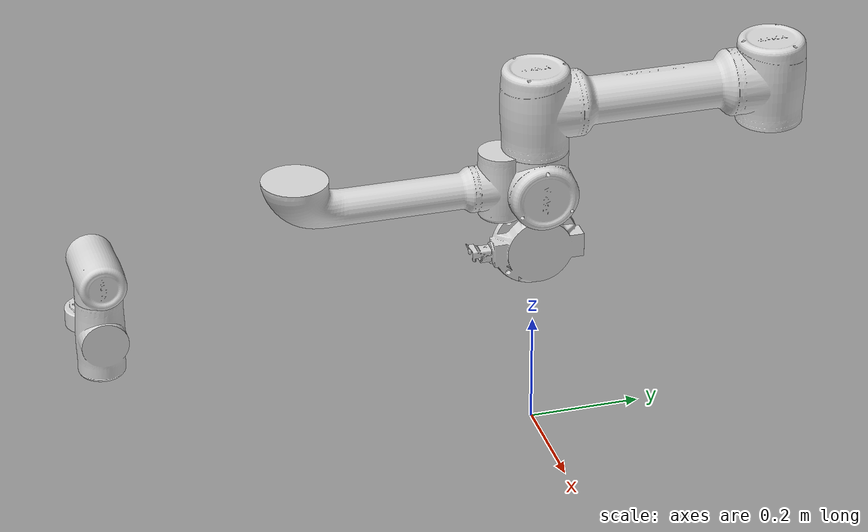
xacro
<?xml version="1.0"?>
<robot xmlns:xacro="http://www.ros.org/wiki/xacro" name="jaka_zu5">
    <xacro:arg name="initial_positions_file" default="initial_positions.yaml" />

    <!-- Import jaka_zu5 urdf file -->
    <xacro:include filename="$(find jaka_description)/urdf/jaka_zu5.urdf" />

    <!-- Import control_xacro -->
    <xacro:include filename="jaka_zu5.ros2_control.xacro" />

    <xacro:jaka_zu5_ros2_control name="RealSystem" initial_positions_file="$(arg initial_positions_file)"/>

</robot>

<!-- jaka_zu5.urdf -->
<robot
  name="jaka_zu5">

  <!-- LINK -->
  <link name="base_link" />

  <link
    name="Link_0">
    <inertial>
      <origin
        xyz="0.00096371 8.8222E-08 0.019555"
        rpy="0 0 0" />
      <mass
        value="4.0392" />
      <inertia
        ixx="0.0048763"
        ixy="-1.8056E-07"
        ixz="2.5196E-05"
        iyy="0.0068003"
        iyz="-1.7678E-09"
        izz="0.010618" />
    </inertial>
    <visual>
      <origin
        xyz="0 0 0"
        rpy="0 0 0" />
      <geometry>
        <mesh
          filename="package://jaka_description/meshes/jaka_zu5_meshes/Link_0.STL" />
      </geometry>
      <material
        name="">
        <color
          rgba="0.84706 0.84706 0.84706 1" />
      </material>
    </visual>
    <collision>
      <origin
        xyz="0 0 0"
        rpy="0 0 0" />
      <geometry>
        <mesh
          filename="package://jaka_description/meshes/jaka_zu5_meshes/Link_0.STL" />
      </geometry>
    </collision>
  </link>
  <link
    name="Link_1">
    <inertial>
      <origin
        xyz="-2.5186E-07 0.0033226 -0.001509"
        rpy="0 0 0" />
      <mass
        value="15.135" />
      <inertia
        ixx="0.044302"
        ixy="1.5349E-07"
        ixz="-6.1966E-07"
        iyy="0.043091"
        iyz="1.4326E-05"
        izz="0.030523" />
    </inertial>
    <visual>
      <origin
        xyz="0 0 0"
        rpy="0 0 0" />
      <geometry>
        <mesh
          filename="package://jaka_description/meshes/jaka_zu5_meshes/Link_1.STL" />
      </geometry>
      <material
        name="">
        <color
          rgba="0.84706 0.84706 0.84706 1" />
      </material>
    </visual>
    <collision>
      <origin
        xyz="0 0 0"
        rpy="0 0 0" />
      <geometry>
        <mesh
          filename="package://jaka_description/meshes/jaka_zu5_meshes/Link_1.STL" />
      </geometry>
    </collision>
  </link>

  <link
    name="Link_2">
    <inertial>
      <origin
        xyz="0.215 6.4325E-09 -0.14315"
        rpy="0 0 0" />
      <mass
        value="45.847" />
      <inertia
        ixx="0.10377"
        ixy="-1.3562E-06"
        ixz="2.544E-07"
        iyy="1.5964"
        iyz="2.1509E-08"
        izz="1.5689" />
    </inertial>
    <visual>
      <origin
        xyz="0 0 0"
        rpy="0 0 0" />
      <geometry>
        <mesh
          filename="package://jaka_description/meshes/jaka_zu5_meshes/Link_2.STL" />
      </geometry>
      <material
        name="">
        <color
          rgba="0.84706 0.84706 0.84706 1" />
      </material>
    </visual>
    <collision>
      <origin
        xyz="0 0 0"
        rpy="0 0 0" />
      <geometry>
        <mesh
          filename="package://jaka_description/meshes/jaka_zu5_meshes/Link_2.STL" />
      </geometry>
    </collision>
  </link>

  <link
    name="Link_3">
    <inertial>
      <origin
        xyz="0.19087 -1.1862E-05 -0.010587"
        rpy="0 0 0" />
      <mass
        value="18.069" />
      <inertia
        ixx="0.022066"
        ixy="-3.4554E-06"
        ixz="-0.022609"
        iyy="0.41632"
        iyz="1.1508E-08"
        izz="0.41071" />
    </inertial>
    <visual>
      <origin
        xyz="0 0 0"
        rpy="0 0 0" />
      <geometry>
        <mesh
          filename="package://jaka_description/meshes/jaka_zu5_meshes/Link_3.STL" />
      </geometry>
      <material
        name="">
        <color
          rgba="0.84706 0.84706 0.84706 1" />
      </material>
    </visual>
    <collision>
      <origin
        xyz="0 0 0"
        rpy="0 0 0" />
      <geometry>
        <mesh
          filename="package://jaka_description/meshes/jaka_zu5_meshes/Link_3.STL" />
      </geometry>
    </collision>
  </link>

  <link
    name="Link_4">
    <inertial>
      <origin
        xyz="-2.1345E-06 -0.0058004 0.0026717"
        rpy="0 0 0" />
      <mass
        value="5.5525" />
      <inertia
        ixx="0.0092564"
        ixy="1.1341E-07"
        ixz="-1.2578E-08"
        iyy="0.0052251"
        iyz="-8.3499E-05"
        izz="0.0089683" />
    </inertial>
    <visual>
      <origin
        xyz="0 0 0"
        rpy="0 0 0" />
      <geometry>
        <mesh
          filename="package://jaka_description/meshes/jaka_zu5_meshes/Link_4.STL" />
      </geometry>
      <material
        name="">
        <color
          rgba="0.84706 0.84706 0.84706 1" />
      </material>
    </visual>
    <collision>
      <origin
        xyz="0 0 0"
        rpy="0 0 0" />
      <geometry>
        <mesh
          filename="package://jaka_description/meshes/jaka_zu5_meshes/Link_4.STL" />
      </geometry>
    </collision>
  </link>

  <link
    name="Link_5">
    <inertial>
      <origin
        xyz="-2.0304E-06 -0.0028889 -0.0023424"
        rpy="0 0 0" />
      <mass
        value="6.3339" />
      <inertia
        ixx="0.012993"
        ixy="-1.0764E-07"
        ixz="5.8559E-09"
        iyy="0.0058454"
        iyz="4.5426E-05"
        izz="0.0127" />
    </inertial>
    <visual>
      <origin
        xyz="0 0 0"
        rpy="0 0 0" />
      <geometry>
        <mesh
          filename="package://jaka_description/meshes/jaka_zu5_meshes/Link_5.STL" />
      </geometry>
      <material
        name="">
        <color
          rgba="0.84706 0.84706 0.84706 1" />
      </material>
    </visual>
    <collision>
      <origin
        xyz="0 0 0"
        rpy="0 0 0" />
      <geometry>
        <mesh
          filename="package://jaka_description/meshes/jaka_zu5_meshes/Link_5.STL" />
      </geometry>
    </collision>
  </link>

  <link
    name="Link_6">
    <inertial>
      <origin
        xyz="2.7652E-05 -1.3485E-05 -0.021245"
        rpy="0 0 0" />
      <mass
        value="1.4169" />
      <inertia
        ixx="0.00071853"
        ixy="-6.9778E-07"
        ixz="-6.378E-07"
        iyy="0.00072375"
        iyz="8.3072E-07"
        izz="0.0011337" />
    </inertial>
    <visual>
      <origin
        xyz="0 0 0"
        rpy="0 0 0" />
      <geometry>
        <mesh
          filename="package://jaka_description/meshes/jaka_zu5_meshes/Link_6.STL" />
      </geometry>
      <material
        name="">
        <color
          rgba="0.84706 0.84706 0.84706 1" />
      </material>
    </visual>
    <collision>
      <origin
        xyz="0 0 0"
        rpy="0 0 0" />
      <geometry>
        <mesh
          filename="package://jaka_description/meshes/jaka_zu5_meshes/Link_6.STL" />
      </geometry>
    </collision>
  </link>

  <!-- JOINT -->
  <joint name="fixed" type="fixed">
    <origin xyz="0 0 0.36" rpy="0 0 -1.57" />
     <parent link="base_link"/>
     <child link="Link_0"/>
  </joint>

<!-- base_link 为移动机械臂的基坐标，在水平地面上，Link_0为 机械臂基坐标，机械臂基座在地面高36厘米处 -->

  <joint
    name="joint_1"
    type="revolute">
    <origin
      xyz="0 0 0.12015"
      rpy="0 0 0" />
    <parent
      link="Link_0" />
    <child
      link="Link_1" />
    <axis
      xyz="0 0 1" />
    <limit
      lower="-6.28"
      upper="6.28"
      effort="2000"
      velocity="3.14" />
  </joint>

  <joint
    name="joint_2"
    type="revolute">
    <origin
      xyz="0 0 0"
      rpy="1.5708 0 0" />
    <parent
      link="Link_1" />
    <child
      link="Link_2" />
    <axis
      xyz="0 0 1" />
    <limit
      lower="-1.48"
      upper="4.62"
      effort="5000"
      velocity="3.14" />
  </joint>

  <joint
    name="joint_3"
    type="revolute">
    <origin
      xyz="0.43 0 0"
      rpy="0 0 0" />
    <parent
      link="Link_2" />
    <child
      link="Link_3" />
    <axis
      xyz="0 0 1" />
    <limit
      lower="-3.05"
      upper="3.05"
      effort="5000"
      velocity="3.14" />
  </joint>

  <joint
    name="joint_4"
    type="revolute">
    <origin
      xyz="0.3685 -1.185E-05 -0.114"
      rpy="0 0 0" />
    <parent
      link="Link_3" />
    <child
      link="Link_4" />
    <axis
      xyz="0 0 1" />
    <limit
      lower="-1.48"
      upper="4.62"
      effort="2000"
      velocity="3.14" />
  </joint>

  <joint
    name="joint_5"
    type="revolute">
    <origin
      xyz="0 -0.1135 0"
      rpy="1.5708 0 0" />
    <parent
      link="Link_4" />
    <child
      link="Link_5" />
    <axis
      xyz="0 0 1" />
    <limit
      lower="-6.28"
      upper="6.28"
      effort="3000"
      velocity="3.14" />
  </joint>

  <joint
    name="joint_6"
    type="revolute">
    <origin
      xyz="0 0.107 0"
      rpy="-1.5708 0 0" />
    <parent
      link="Link_5" />
    <child
      link="Link_6" />
    <axis
      xyz="0 0 1" />
    <limit
      lower="-6.28"
      upper="6.28"
      effort="1000"
      velocity="3.14" />
  </joint>

  <transmission name="trans_joint_1">
        <type>transmission_interface/SimpleTransmission</type>
        <joint name="joint_1">
            <hardwareInterface>hardware_interface/PositionJointInterface</hardwareInterface>
        </joint>
        <actuator name="joint_1_motor">
            <hardwareInterface>hardware_interface/PositionJointInterface</hardwareInterface>
            <mechanicalReduction>1</mechanicalReduction>
        </actuator>
    </transmission>
    <transmission name="trans_joint_2">
        <type>transmission_interface/SimpleTransmission</type>
        <joint name="joint_2">
            <hardwareInterface>hardware_interface/PositionJointInterface</hardwareInterface>
        </joint>
        <actuator name="joint_2_motor">
            <hardwareInterface>hardware_interface/PositionJointInterface</hardwareInterface>
            <mechanicalReduction>1</mechanicalReduction>
        </actuator>
    </transmission>
    <transmission name="trans_joint_3">
        <type>transmission_interface/SimpleTransmission</type>
        <joint name="joint_3">
            <hardwareInterface>hardware_interface/PositionJointInterface</hardwareInterface>
        </joint>
        <actuator name="joint_3_motor">
            <hardwareInterface>hardware_interface/PositionJointInterface</hardwareInterface>
            <mechanicalReduction>1</mechanicalReduction>
        </actuator>
    </transmission>
    <transmission name="trans_joint_4">
        <type>transmission_interface/SimpleTransmission</type>
        <joint name="joint_4">
            <hardwareInterface>hardware_interface/PositionJointInterface</hardwareInterface>
        </joint>
        <actuator name="joint_4_motor">
            <hardwareInterface>hardware_interface/PositionJointInterface</hardwareInterface>
            <mechanicalReduction>1</mechanicalReduction>
        </actuator>
    </transmission>
    <transmission name="trans_joint_5">
        <type>transmission_interface/SimpleTransmission</type>
        <joint name="joint_5">
            <hardwareInterface>hardware_interface/PositionJointInterface</hardwareInterface>
        </joint>
        <actuator name="joint_5_motor">
            <hardwareInterface>hardware_interface/PositionJointInterface</hardwareInterface>
            <mechanicalReduction>1</mechanicalReduction>
        </actuator>
    </transmission>
    <transmission name="trans_joint_6">
        <type>transmission_interface/SimpleTransmission</type>
        <joint name="joint_6">
            <hardwareInterface>hardware_interface/PositionJointInterface</hardwareInterface>
        </joint>
        <actuator name="joint_6_motor">
            <hardwareInterface>hardware_interface/PositionJointInterface</hardwareInterface>
            <mechanicalReduction>1</mechanicalReduction>
        </actuator>
    </transmission>
    <gazebo>
        <plugin name="gazebo_ros_control" filename="libgazebo_ros_control.so">
            <robotNamespace>/</robotNamespace>
        </plugin>
    </gazebo>
</robot>
